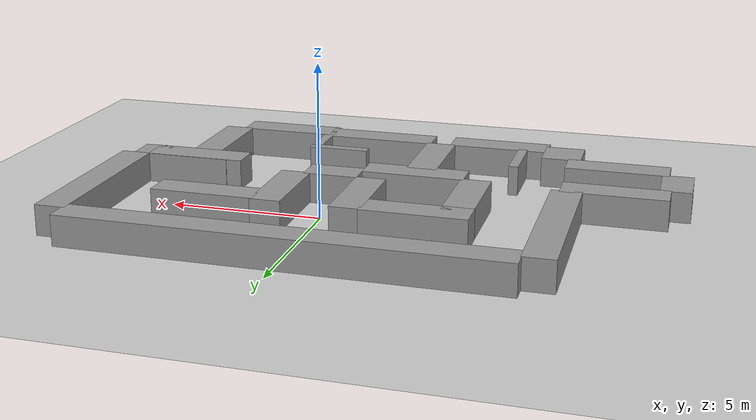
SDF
<sdf version="1.7">
 <world name="default">
  <light name="sun" type="directional">
   <pose>0 0 10 0 -0 0</pose>
   <diffuse>0.8 0.8 0.8 1</diffuse>
   <specular>0.2 0.2 0.2 1</specular>
   <attenuation>
    <range>1000</range>
    <constant>0.9</constant>
    <linear>0.01</linear>
    <quadratic>0.001</quadratic>
   </attenuation>
   <direction>-0.5 0.1 -0.9</direction>
   <spot><inner_angle>0</inner_angle><outer_angle>0</outer_angle><falloff>0</falloff></spot>
  </light>
  <model name="ground_plane">
   <static>1</static>
   <link name="link">
    <collision name="collision">
     <geometry><plane><normal>0 0 1</normal><size>100 100</size></plane></geometry>
     <surface>
      <contact><collide_bitmask>65535</collide_bitmask></contact>
      <friction><ode><mu>100</mu><mu2>50</mu2></ode></friction>
     </surface>
    </collision>
    <visual name="visual">
     <cast_shadows>0</cast_shadows>
     <geometry><plane><normal>0 0 1</normal><size>100 100</size></plane></geometry>
     <material>
      <script><uri>file://media/materials/scripts/gazebo.material</uri><name>Gazebo/Grey</name></script>
     </material>
    </visual>
   </link>
  </model>
  <gravity>0 0 -9.8</gravity>
  <magnetic_field>6e-06 2.3e-05 -4.2e-05</magnetic_field>
  <atmosphere type="adiabatic"/>
  <physics type="ode">
   <max_step_size>0.001</max_step_size>
   <real_time_factor>1</real_time_factor>
   <real_time_update_rate>1000</real_time_update_rate>
  </physics>
  <scene><ambient>0.4 0.4 0.4 1</ambient><background>0.7 0.7 0.7 1</background><shadows>1</shadows></scene>
  <spherical_coordinates>
   <surface_model>EARTH_WGS84</surface_model>
   <latitude_deg>0</latitude_deg>
   <longitude_deg>0</longitude_deg>
   <elevation>0</elevation>
   <heading_deg>0</heading_deg>
  </spherical_coordinates>
  <model name="maze2">
   <link name="link">
    <inertial>
     <mass>2.96212</mass>
     <inertia><ixx>2.41268</ixx><ixy>0</ixy><ixz>0</ixz><iyy>0.493687</iyy><iyz>0</iyz><izz>2.41268</izz></inertia>
    </inertial>
    <visual name="visual">
     <geometry><box><size>1 2.96211 1</size></box></geometry>
     <material>
      <script><name>Gazebo/Grey</name><uri>file://media/materials/scripts/gazebo.material</uri></script>
      <shader type="pixel"/>
     </material>
    </visual>
    <collision name="collision">
     <geometry><box><size>1 2.96211 1</size></box></geometry>
     <surface>
      <friction>
       <ode><mu>1</mu><mu2>1</mu2><fdir1>0 0 0</fdir1><slip1>0</slip1><slip2>0</slip2></ode>
       <torsional>
        <coefficient>1</coefficient>
        <patch_radius>0</patch_radius>
        <surface_radius>0</surface_radius>
        <use_patch_radius>1</use_patch_radius>
        <ode><slip>0</slip></ode>
       </torsional>
      </friction>
      <bounce><restitution_coefficient>0</restitution_coefficient><threshold>1e+06</threshold></bounce>
      <contact>
       <collide_without_contact>0</collide_without_contact>
       <collide_without_contact_bitmask>1</collide_without_contact_bitmask>
       <collide_bitmask>1</collide_bitmask>
       <ode>
        <soft_cfm>0</soft_cfm>
        <soft_erp>0.2</soft_erp>
        <kp>1e+13</kp>
        <kd>1</kd>
        <max_vel>0.01</max_vel>
        <min_depth>0</min_depth>
       </ode>
       <bullet>
        <split_impulse>1</split_impulse>
        <split_impulse_penetration_threshold>-0.01</split_impulse_penetration_threshold>
        <soft_cfm>0</soft_cfm>
        <soft_erp>0.2</soft_erp>
        <kp>1e+13</kp>
        <kd>1</kd>
       </bullet>
      </contact>
     </surface>
    </collision>
   </link>
   <link name="link_clone">
    <inertial>
     <mass>1.79526</mass>
     <inertia>
      <ixx>0.631773</ixx>
      <ixy>0</ixy>
      <ixz>0</ixz>
      <iyy>0.29921</iyy>
      <iyz>0</iyz>
      <izz>0.631773</izz>
     </inertia>
    </inertial>
    <pose>1.38106 -1.89898 0 0 -0 1.5708</pose>
    <visual name="visual">
     <geometry><box><size>1 1.79526 1</size></box></geometry>
     <material>
      <script><name>Gazebo/Grey</name><uri>file://media/materials/scripts/gazebo.material</uri></script>
      <shader type="pixel"/>
     </material>
    </visual>
    <collision name="collision">
     <geometry><box><size>1 1.79526 1</size></box></geometry>
     <surface>
      <friction>
       <ode><mu>1</mu><mu2>1</mu2><fdir1>0 0 0</fdir1><slip1>0</slip1><slip2>0</slip2></ode>
       <torsional>
        <coefficient>1</coefficient>
        <patch_radius>0</patch_radius>
        <surface_radius>0</surface_radius>
        <use_patch_radius>1</use_patch_radius>
        <ode><slip>0</slip></ode>
       </torsional>
      </friction>
      <bounce><restitution_coefficient>0</restitution_coefficient><threshold>1e+06</threshold></bounce>
      <contact>
       <collide_without_contact>0</collide_without_contact>
       <collide_without_contact_bitmask>1</collide_without_contact_bitmask>
       <collide_bitmask>1</collide_bitmask>
       <ode>
        <soft_cfm>0</soft_cfm>
        <soft_erp>0.2</soft_erp>
        <kp>1e+13</kp>
        <kd>1</kd>
        <max_vel>0.01</max_vel>
        <min_depth>0</min_depth>
       </ode>
       <bullet>
        <split_impulse>1</split_impulse>
        <split_impulse_penetration_threshold>-0.01</split_impulse_penetration_threshold>
        <soft_cfm>0</soft_cfm>
        <soft_erp>0.2</soft_erp>
        <kp>1e+13</kp>
        <kd>1</kd>
       </bullet>
      </contact>
     </surface>
    </collision>
   </link>
   <link name="link_clone_0">
    <inertial>
     <mass>2.96212</mass>
     <inertia><ixx>2.41268</ixx><ixy>0</ixy><ixz>0</ixz><iyy>0.493687</iyy><iyz>0</iyz><izz>2.41268</izz></inertia>
    </inertial>
    <pose>2.55538 -0.018272 0 0 -0 0</pose>
    <visual name="visual">
     <geometry><box><size>1 2.96211 1</size></box></geometry>
     <material>
      <script><name>Gazebo/Grey</name><uri>file://media/materials/scripts/gazebo.material</uri></script>
      <shader type="pixel"/>
     </material>
    </visual>
    <collision name="collision">
     <geometry><box><size>1 2.96211 1</size></box></geometry>
     <surface>
      <friction>
       <ode><mu>1</mu><mu2>1</mu2><fdir1>0 0 0</fdir1><slip1>0</slip1><slip2>0</slip2></ode>
       <torsional>
        <coefficient>1</coefficient>
        <patch_radius>0</patch_radius>
        <surface_radius>0</surface_radius>
        <use_patch_radius>1</use_patch_radius>
        <ode><slip>0</slip></ode>
       </torsional>
      </friction>
      <bounce><restitution_coefficient>0</restitution_coefficient><threshold>1e+06</threshold></bounce>
      <contact>
       <collide_without_contact>0</collide_without_contact>
       <collide_without_contact_bitmask>1</collide_without_contact_bitmask>
       <collide_bitmask>1</collide_bitmask>
       <ode>
        <soft_cfm>0</soft_cfm>
        <soft_erp>0.2</soft_erp>
        <kp>1e+13</kp>
        <kd>1</kd>
        <max_vel>0.01</max_vel>
        <min_depth>0</min_depth>
       </ode>
       <bullet>
        <split_impulse>1</split_impulse>
        <split_impulse_penetration_threshold>-0.01</split_impulse_penetration_threshold>
        <soft_cfm>0</soft_cfm>
        <soft_erp>0.2</soft_erp>
        <kp>1e+13</kp>
        <kd>1</kd>
       </bullet>
      </contact>
     </surface>
    </collision>
   </link>
   <link name="link_clone_1">
    <inertial>
     <mass>5.8184</mass>
     <inertia><ixx>16.8993</ixx><ixy>0</ixy><ixz>0</ixz><iyy>0.969733</iyy><iyz>0</iyz><izz>16.8993</izz></inertia>
    </inertial>
    <pose>-6.21926 0.997466 -0 0 -0 0</pose>
    <visual name="visual">
     <geometry><box><size>1 5.81837 1</size></box></geometry>
     <material>
      <script><name>Gazebo/Grey</name><uri>file://media/materials/scripts/gazebo.material</uri></script>
      <shader type="pixel"/>
     </material>
    </visual>
    <collision name="collision">
     <geometry><box><size>1 5.81837 1</size></box></geometry>
     <surface>
      <friction>
       <ode><mu>1</mu><mu2>1</mu2><fdir1>0 0 0</fdir1><slip1>0</slip1><slip2>0</slip2></ode>
       <torsional>
        <coefficient>1</coefficient>
        <patch_radius>0</patch_radius>
        <surface_radius>0</surface_radius>
        <use_patch_radius>1</use_patch_radius>
        <ode><slip>0</slip></ode>
       </torsional>
      </friction>
      <bounce><restitution_coefficient>0</restitution_coefficient><threshold>1e+06</threshold></bounce>
      <contact>
       <collide_without_contact>0</collide_without_contact>
       <collide_without_contact_bitmask>1</collide_without_contact_bitmask>
       <collide_bitmask>1</collide_bitmask>
       <ode>
        <soft_cfm>0</soft_cfm>
        <soft_erp>0.2</soft_erp>
        <kp>1e+13</kp>
        <kd>1</kd>
        <max_vel>0.01</max_vel>
        <min_depth>0</min_depth>
       </ode>
       <bullet>
        <split_impulse>1</split_impulse>
        <split_impulse_penetration_threshold>-0.01</split_impulse_penetration_threshold>
        <soft_cfm>0</soft_cfm>
        <soft_erp>0.2</soft_erp>
        <kp>1e+13</kp>
        <kd>1</kd>
       </bullet>
      </contact>
     </surface>
    </collision>
   </link>
   <link name="link_clone_1_clone">
    <inertial>
     <mass>5.8184</mass>
     <inertia><ixx>16.8993</ixx><ixy>0</ixy><ixz>0</ixz><iyy>0.969733</iyy><iyz>0</iyz><izz>16.8993</izz></inertia>
    </inertial>
    <pose>8.57948 0.840523 0 0 -0 0</pose>
    <visual name="visual">
     <geometry><box><size>1 5.81837 1</size></box></geometry>
     <material>
      <script><name>Gazebo/Grey</name><uri>file://media/materials/scripts/gazebo.material</uri></script>
      <shader type="pixel"/>
     </material>
    </visual>
    <collision name="collision">
     <geometry><box><size>1 5.81837 1</size></box></geometry>
     <surface>
      <friction>
       <ode><mu>1</mu><mu2>1</mu2><fdir1>0 0 0</fdir1><slip1>0</slip1><slip2>0</slip2></ode>
       <torsional>
        <coefficient>1</coefficient>
        <patch_radius>0</patch_radius>
        <surface_radius>0</surface_radius>
        <use_patch_radius>1</use_patch_radius>
        <ode><slip>0</slip></ode>
       </torsional>
      </friction>
      <bounce><restitution_coefficient>0</restitution_coefficient><threshold>1e+06</threshold></bounce>
      <contact>
       <collide_without_contact>0</collide_without_contact>
       <collide_without_contact_bitmask>1</collide_without_contact_bitmask>
       <collide_bitmask>1</collide_bitmask>
       <ode>
        <soft_cfm>0</soft_cfm>
        <soft_erp>0.2</soft_erp>
        <kp>1e+13</kp>
        <kd>1</kd>
        <max_vel>0.01</max_vel>
        <min_depth>0</min_depth>
       </ode>
       <bullet>
        <split_impulse>1</split_impulse>
        <split_impulse_penetration_threshold>-0.01</split_impulse_penetration_threshold>
        <soft_cfm>0</soft_cfm>
        <soft_erp>0.2</soft_erp>
        <kp>1e+13</kp>
        <kd>1</kd>
       </bullet>
      </contact>
     </surface>
    </collision>
   </link>
   <link name="link_clone_2">
    <inertial>
     <mass>2.96212</mass>
     <inertia><ixx>2.41268</ixx><ixy>0</ixy><ixz>0</ixz><iyy>0.493687</iyy><iyz>0</iyz><izz>2.41268</izz></inertia>
    </inertial>
    <pose>-3.29453 -0.71203 -0 0 -0 0</pose>
    <visual name="visual">
     <geometry><box><size>1 2.96211 1</size></box></geometry>
     <material>
      <script><name>Gazebo/Grey</name><uri>file://media/materials/scripts/gazebo.material</uri></script>
      <shader type="pixel"/>
     </material>
    </visual>
    <collision name="collision">
     <geometry><box><size>1 2.96211 1</size></box></geometry>
     <surface>
      <friction>
       <ode><mu>1</mu><mu2>1</mu2><fdir1>0 0 0</fdir1><slip1>0</slip1><slip2>0</slip2></ode>
       <torsional>
        <coefficient>1</coefficient>
        <patch_radius>0</patch_radius>
        <surface_radius>0</surface_radius>
        <use_patch_radius>1</use_patch_radius>
        <ode><slip>0</slip></ode>
       </torsional>
      </friction>
      <bounce><restitution_coefficient>0</restitution_coefficient><threshold>1e+06</threshold></bounce>
      <contact>
       <collide_without_contact>0</collide_without_contact>
       <collide_without_contact_bitmask>1</collide_without_contact_bitmask>
       <collide_bitmask>1</collide_bitmask>
       <ode>
        <soft_cfm>0</soft_cfm>
        <soft_erp>0.2</soft_erp>
        <kp>1e+13</kp>
        <kd>1</kd>
        <max_vel>0.01</max_vel>
        <min_depth>0</min_depth>
       </ode>
       <bullet>
        <split_impulse>1</split_impulse>
        <split_impulse_penetration_threshold>-0.01</split_impulse_penetration_threshold>
        <soft_cfm>0</soft_cfm>
        <soft_erp>0.2</soft_erp>
        <kp>1e+13</kp>
        <kd>1</kd>
       </bullet>
      </contact>
     </surface>
    </collision>
   </link>
   <link name="link_clone_2_clone">
    <inertial>
     <mass>1.62291</mass>
     <inertia>
      <ixx>0.491447</ixx>
      <ixy>0</ixy>
      <ixz>0</ixz>
      <iyy>0.270485</iyy>
      <iyz>0</iyz>
      <izz>0.491447</izz>
     </inertia>
    </inertial>
    <pose>-9.50421 -3.53684 -0 0 -0 0</pose>
    <visual name="visual">
     <geometry><box><size>1 1.62291 1</size></box></geometry>
     <material>
      <script><name>Gazebo/Grey</name><uri>file://media/materials/scripts/gazebo.material</uri></script>
      <shader type="pixel"/>
     </material>
    </visual>
    <collision name="collision">
     <geometry><box><size>1 1.62291 1</size></box></geometry>
     <surface>
      <friction>
       <ode><mu>1</mu><mu2>1</mu2><fdir1>0 0 0</fdir1><slip1>0</slip1><slip2>0</slip2></ode>
       <torsional>
        <coefficient>1</coefficient>
        <patch_radius>0</patch_radius>
        <surface_radius>0</surface_radius>
        <use_patch_radius>1</use_patch_radius>
        <ode><slip>0</slip></ode>
       </torsional>
      </friction>
      <bounce><restitution_coefficient>0</restitution_coefficient><threshold>1e+06</threshold></bounce>
      <contact>
       <collide_without_contact>0</collide_without_contact>
       <collide_without_contact_bitmask>1</collide_without_contact_bitmask>
       <collide_bitmask>1</collide_bitmask>
       <ode>
        <soft_cfm>0</soft_cfm>
        <soft_erp>0.2</soft_erp>
        <kp>1e+13</kp>
        <kd>1</kd>
        <max_vel>0.01</max_vel>
        <min_depth>0</min_depth>
       </ode>
       <bullet>
        <split_impulse>1</split_impulse>
        <split_impulse_penetration_threshold>-0.01</split_impulse_penetration_threshold>
        <soft_cfm>0</soft_cfm>
        <soft_erp>0.2</soft_erp>
        <kp>1e+13</kp>
        <kd>1</kd>
       </bullet>
      </contact>
     </surface>
    </collision>
   </link>
   <link name="link_clone_3">
    <inertial>
     <mass>2.96212</mass>
     <inertia><ixx>2.41268</ixx><ixy>0</ixy><ixz>0</ixz><iyy>0.493687</iyy><iyz>0</iyz><izz>2.41268</izz></inertia>
    </inertial>
    <pose>-1.31515 -4.38087 -0 0 -0 0</pose>
    <visual name="visual">
     <geometry><box><size>1 2.96211 1</size></box></geometry>
     <material>
      <script><name>Gazebo/Grey</name><uri>file://media/materials/scripts/gazebo.material</uri></script>
      <shader type="pixel"/>
     </material>
    </visual>
    <collision name="collision">
     <geometry><box><size>1 2.96211 1</size></box></geometry>
     <surface>
      <friction>
       <ode><mu>1</mu><mu2>1</mu2><fdir1>0 0 0</fdir1><slip1>0</slip1><slip2>0</slip2></ode>
       <torsional>
        <coefficient>1</coefficient>
        <patch_radius>0</patch_radius>
        <surface_radius>0</surface_radius>
        <use_patch_radius>1</use_patch_radius>
        <ode><slip>0</slip></ode>
       </torsional>
      </friction>
      <bounce><restitution_coefficient>0</restitution_coefficient><threshold>1e+06</threshold></bounce>
      <contact>
       <collide_without_contact>0</collide_without_contact>
       <collide_without_contact_bitmask>1</collide_without_contact_bitmask>
       <collide_bitmask>1</collide_bitmask>
       <ode>
        <soft_cfm>0</soft_cfm>
        <soft_erp>0.2</soft_erp>
        <kp>1e+13</kp>
        <kd>1</kd>
        <max_vel>0.01</max_vel>
        <min_depth>0</min_depth>
       </ode>
       <bullet>
        <split_impulse>1</split_impulse>
        <split_impulse_penetration_threshold>-0.01</split_impulse_penetration_threshold>
        <soft_cfm>0</soft_cfm>
        <soft_erp>0.2</soft_erp>
        <kp>1e+13</kp>
        <kd>1</kd>
       </bullet>
      </contact>
     </surface>
    </collision>
   </link>
   <link name="link_clone_3_clone">
    <inertial>
     <mass>0.649592</mass>
     <inertia><ixx>0.272357</ixx><ixy>0</ixy><ixz>0</ixz><iyy>0.0598</iyy><iyz>0</iyz><izz>0.223891</izz></inertia>
    </inertial>
    <pose>-4.19306 -4.93795 -0 0 -0 0</pose>
    <visual name="visual">
     <geometry><box><size>0.323563 2.0078 1</size></box></geometry>
     <material>
      <script><name>Gazebo/Grey</name><uri>file://media/materials/scripts/gazebo.material</uri></script>
      <shader type="pixel"/>
     </material>
    </visual>
    <collision name="collision">
     <geometry><box><size>0.323563 2.0078 1</size></box></geometry>
     <surface>
      <friction>
       <ode><mu>1</mu><mu2>1</mu2><fdir1>0 0 0</fdir1><slip1>0</slip1><slip2>0</slip2></ode>
       <torsional>
        <coefficient>1</coefficient>
        <patch_radius>0</patch_radius>
        <surface_radius>0</surface_radius>
        <use_patch_radius>1</use_patch_radius>
        <ode><slip>0</slip></ode>
       </torsional>
      </friction>
      <bounce><restitution_coefficient>0</restitution_coefficient><threshold>1e+06</threshold></bounce>
      <contact>
       <collide_without_contact>0</collide_without_contact>
       <collide_without_contact_bitmask>1</collide_without_contact_bitmask>
       <collide_bitmask>1</collide_bitmask>
       <ode>
        <soft_cfm>0</soft_cfm>
        <soft_erp>0.2</soft_erp>
        <kp>1e+13</kp>
        <kd>1</kd>
        <max_vel>0.01</max_vel>
        <min_depth>0</min_depth>
       </ode>
       <bullet>
        <split_impulse>1</split_impulse>
        <split_impulse_penetration_threshold>-0.01</split_impulse_penetration_threshold>
        <soft_cfm>0</soft_cfm>
        <soft_erp>0.2</soft_erp>
        <kp>1e+13</kp>
        <kd>1</kd>
       </bullet>
      </contact>
     </surface>
    </collision>
   </link>
   <link name="link_clone_3_clone_0">
    <inertial>
     <mass>2.96212</mass>
     <inertia><ixx>2.41268</ixx><ixy>0</ixy><ixz>0</ixz><iyy>0.493687</iyy><iyz>0</iyz><izz>2.41268</izz></inertia>
    </inertial>
    <pose>6.30293 -4.49353 0 0 -0 0</pose>
    <visual name="visual">
     <geometry><box><size>1 2.96211 1</size></box></geometry>
     <material>
      <script><name>Gazebo/Grey</name><uri>file://media/materials/scripts/gazebo.material</uri></script>
      <shader type="pixel"/>
     </material>
    </visual>
    <collision name="collision">
     <geometry><box><size>1 2.96211 1</size></box></geometry>
     <surface>
      <friction>
       <ode><mu>1</mu><mu2>1</mu2><fdir1>0 0 0</fdir1><slip1>0</slip1><slip2>0</slip2></ode>
       <torsional>
        <coefficient>1</coefficient>
        <patch_radius>0</patch_radius>
        <surface_radius>0</surface_radius>
        <use_patch_radius>1</use_patch_radius>
        <ode><slip>0</slip></ode>
       </torsional>
      </friction>
      <bounce><restitution_coefficient>0</restitution_coefficient><threshold>1e+06</threshold></bounce>
      <contact>
       <collide_without_contact>0</collide_without_contact>
       <collide_without_contact_bitmask>1</collide_without_contact_bitmask>
       <collide_bitmask>1</collide_bitmask>
       <ode>
        <soft_cfm>0</soft_cfm>
        <soft_erp>0.2</soft_erp>
        <kp>1e+13</kp>
        <kd>1</kd>
        <max_vel>0.01</max_vel>
        <min_depth>0</min_depth>
       </ode>
       <bullet>
        <split_impulse>1</split_impulse>
        <split_impulse_penetration_threshold>-0.01</split_impulse_penetration_threshold>
        <soft_cfm>0</soft_cfm>
        <soft_erp>0.2</soft_erp>
        <kp>1e+13</kp>
        <kd>1</kd>
       </bullet>
      </contact>
     </surface>
    </collision>
   </link>
   <link name="link_clone_3_clone_clone">
    <inertial>
     <mass>0.649592</mass>
     <inertia><ixx>0.272357</ixx><ixy>0</ixy><ixz>0</ixz><iyy>0.0598</iyy><iyz>0</iyz><izz>0.223891</izz></inertia>
    </inertial>
    <pose>2.84091 -5.24484 0 0 -0 0</pose>
    <visual name="visual">
     <geometry><box><size>0.323563 2.0078 1</size></box></geometry>
     <material>
      <script><name>Gazebo/Grey</name><uri>file://media/materials/scripts/gazebo.material</uri></script>
      <shader type="pixel"/>
     </material>
    </visual>
    <collision name="collision">
     <geometry><box><size>0.323563 2.0078 1</size></box></geometry>
     <surface>
      <friction>
       <ode><mu>1</mu><mu2>1</mu2><fdir1>0 0 0</fdir1><slip1>0</slip1><slip2>0</slip2></ode>
       <torsional>
        <coefficient>1</coefficient>
        <patch_radius>0</patch_radius>
        <surface_radius>0</surface_radius>
        <use_patch_radius>1</use_patch_radius>
        <ode><slip>0</slip></ode>
       </torsional>
      </friction>
      <bounce><restitution_coefficient>0</restitution_coefficient><threshold>1e+06</threshold></bounce>
      <contact>
       <collide_without_contact>0</collide_without_contact>
       <collide_without_contact_bitmask>1</collide_without_contact_bitmask>
       <collide_bitmask>1</collide_bitmask>
       <ode>
        <soft_cfm>0</soft_cfm>
        <soft_erp>0.2</soft_erp>
        <kp>1e+13</kp>
        <kd>1</kd>
        <max_vel>0.01</max_vel>
        <min_depth>0</min_depth>
       </ode>
       <bullet>
        <split_impulse>1</split_impulse>
        <split_impulse_penetration_threshold>-0.01</split_impulse_penetration_threshold>
        <soft_cfm>0</soft_cfm>
        <soft_erp>0.2</soft_erp>
        <kp>1e+13</kp>
        <kd>1</kd>
       </bullet>
      </contact>
     </surface>
    </collision>
   </link>
   <link name="link_clone_3_clone_clone_0">
    <inertial>
     <mass>0.649592</mass>
     <inertia><ixx>0.272357</ixx><ixy>0</ixy><ixz>0</ixz><iyy>0.0598</iyy><iyz>0</iyz><izz>0.223891</izz></inertia>
    </inertial>
    <pose>1.98745 -4.45718 0 0 -0 1.5708</pose>
    <visual name="visual">
     <geometry><box><size>0.323563 2.0078 1</size></box></geometry>
     <material>
      <script><name>Gazebo/Grey</name><uri>file://media/materials/scripts/gazebo.material</uri></script>
      <shader type="pixel"/>
     </material>
    </visual>
    <collision name="collision">
     <geometry><box><size>0.323563 2.0078 1</size></box></geometry>
     <surface>
      <friction>
       <ode><mu>1</mu><mu2>1</mu2><fdir1>0 0 0</fdir1><slip1>0</slip1><slip2>0</slip2></ode>
       <torsional>
        <coefficient>1</coefficient>
        <patch_radius>0</patch_radius>
        <surface_radius>0</surface_radius>
        <use_patch_radius>1</use_patch_radius>
        <ode><slip>0</slip></ode>
       </torsional>
      </friction>
      <bounce><restitution_coefficient>0</restitution_coefficient><threshold>1e+06</threshold></bounce>
      <contact>
       <collide_without_contact>0</collide_without_contact>
       <collide_without_contact_bitmask>1</collide_without_contact_bitmask>
       <collide_bitmask>1</collide_bitmask>
       <ode>
        <soft_cfm>0</soft_cfm>
        <soft_erp>0.2</soft_erp>
        <kp>1e+13</kp>
        <kd>1</kd>
        <max_vel>0.01</max_vel>
        <min_depth>0</min_depth>
       </ode>
       <bullet>
        <split_impulse>1</split_impulse>
        <split_impulse_penetration_threshold>-0.01</split_impulse_penetration_threshold>
        <soft_cfm>0</soft_cfm>
        <soft_erp>0.2</soft_erp>
        <kp>1e+13</kp>
        <kd>1</kd>
       </bullet>
      </contact>
     </surface>
    </collision>
   </link>
   <link name="link_clone_clone">
    <inertial>
     <mass>3.37896</mass>
     <inertia><ixx>3.49648</ixx><ixy>0</ixy><ixz>0</ixz><iyy>0.563159</iyy><iyz>0</iyz><izz>3.49648</izz></inertia>
    </inertial>
    <pose>4.67596 0.938299 0 0 -0 1.5708</pose>
    <visual name="visual">
     <geometry><box><size>1 3.37896 1</size></box></geometry>
     <material>
      <script><name>Gazebo/Grey</name><uri>file://media/materials/scripts/gazebo.material</uri></script>
      <shader type="pixel"/>
     </material>
    </visual>
    <collision name="collision">
     <geometry><box><size>1 3.37896 1</size></box></geometry>
     <surface>
      <friction>
       <ode><mu>1</mu><mu2>1</mu2><fdir1>0 0 0</fdir1><slip1>0</slip1><slip2>0</slip2></ode>
       <torsional>
        <coefficient>1</coefficient>
        <patch_radius>0</patch_radius>
        <surface_radius>0</surface_radius>
        <use_patch_radius>1</use_patch_radius>
        <ode><slip>0</slip></ode>
       </torsional>
      </friction>
      <bounce><restitution_coefficient>0</restitution_coefficient><threshold>1e+06</threshold></bounce>
      <contact>
       <collide_without_contact>0</collide_without_contact>
       <collide_without_contact_bitmask>1</collide_without_contact_bitmask>
       <collide_bitmask>1</collide_bitmask>
       <ode>
        <soft_cfm>0</soft_cfm>
        <soft_erp>0.2</soft_erp>
        <kp>1e+13</kp>
        <kd>1</kd>
        <max_vel>0.01</max_vel>
        <min_depth>0</min_depth>
       </ode>
       <bullet>
        <split_impulse>1</split_impulse>
        <split_impulse_penetration_threshold>-0.01</split_impulse_penetration_threshold>
        <soft_cfm>0</soft_cfm>
        <soft_erp>0.2</soft_erp>
        <kp>1e+13</kp>
        <kd>1</kd>
       </bullet>
      </contact>
     </surface>
    </collision>
   </link>
   <link name="link_clone_clone_clone">
    <inertial>
     <mass>3.37896</mass>
     <inertia><ixx>3.49648</ixx><ixy>0</ixy><ixz>0</ixz><iyy>0.563159</iyy><iyz>0</iyz><izz>3.49648</izz></inertia>
    </inertial>
    <pose>-2.10952 1.01211 -0 0 -0 1.5708</pose>
    <visual name="visual">
     <geometry><box><size>1 3.37896 1</size></box></geometry>
     <material>
      <script><name>Gazebo/Grey</name><uri>file://media/materials/scripts/gazebo.material</uri></script>
      <shader type="pixel"/>
     </material>
    </visual>
    <collision name="collision">
     <geometry><box><size>1 3.37896 1</size></box></geometry>
     <surface>
      <friction>
       <ode><mu>1</mu><mu2>1</mu2><fdir1>0 0 0</fdir1><slip1>0</slip1><slip2>0</slip2></ode>
       <torsional>
        <coefficient>1</coefficient>
        <patch_radius>0</patch_radius>
        <surface_radius>0</surface_radius>
        <use_patch_radius>1</use_patch_radius>
        <ode><slip>0</slip></ode>
       </torsional>
      </friction>
      <bounce><restitution_coefficient>0</restitution_coefficient><threshold>1e+06</threshold></bounce>
      <contact>
       <collide_without_contact>0</collide_without_contact>
       <collide_without_contact_bitmask>1</collide_without_contact_bitmask>
       <collide_bitmask>1</collide_bitmask>
       <ode>
        <soft_cfm>0</soft_cfm>
        <soft_erp>0.2</soft_erp>
        <kp>1e+13</kp>
        <kd>1</kd>
        <max_vel>0.01</max_vel>
        <min_depth>0</min_depth>
       </ode>
       <bullet>
        <split_impulse>1</split_impulse>
        <split_impulse_penetration_threshold>-0.01</split_impulse_penetration_threshold>
        <soft_cfm>0</soft_cfm>
        <soft_erp>0.2</soft_erp>
        <kp>1e+13</kp>
        <kd>1</kd>
       </bullet>
      </contact>
     </surface>
    </collision>
   </link>
   <link name="link_clone_clone_clone_0">
    <inertial>
     <mass>13.9146</mass>
     <inertia><ixx>225.666</ixx><ixy>0</ixy><ixz>0</ixz><iyy>2.3191</iyy><iyz>0</iyz><izz>225.666</izz></inertia>
    </inertial>
    <pose>1.19927 3.93784 0 0 -0 1.5708</pose>
    <visual name="visual">
     <geometry><box><size>1 13.9146 1</size></box></geometry>
     <material>
      <script><name>Gazebo/Grey</name><uri>file://media/materials/scripts/gazebo.material</uri></script>
      <shader type="pixel"/>
     </material>
    </visual>
    <collision name="collision">
     <geometry><box><size>1 13.9146 1</size></box></geometry>
     <surface>
      <friction>
       <ode><mu>1</mu><mu2>1</mu2><fdir1>0 0 0</fdir1><slip1>0</slip1><slip2>0</slip2></ode>
       <torsional>
        <coefficient>1</coefficient>
        <patch_radius>0</patch_radius>
        <surface_radius>0</surface_radius>
        <use_patch_radius>1</use_patch_radius>
        <ode><slip>0</slip></ode>
       </torsional>
      </friction>
      <bounce><restitution_coefficient>0</restitution_coefficient><threshold>1e+06</threshold></bounce>
      <contact>
       <collide_without_contact>0</collide_without_contact>
       <collide_without_contact_bitmask>1</collide_without_contact_bitmask>
       <collide_bitmask>1</collide_bitmask>
       <ode>
        <soft_cfm>0</soft_cfm>
        <soft_erp>0.2</soft_erp>
        <kp>1e+13</kp>
        <kd>1</kd>
        <max_vel>0.01</max_vel>
        <min_depth>0</min_depth>
       </ode>
       <bullet>
        <split_impulse>1</split_impulse>
        <split_impulse_penetration_threshold>-0.01</split_impulse_penetration_threshold>
        <soft_cfm>0</soft_cfm>
        <soft_erp>0.2</soft_erp>
        <kp>1e+13</kp>
        <kd>1</kd>
       </bullet>
      </contact>
     </surface>
    </collision>
   </link>
   <link name="link_clone_clone_clone_1">
    <inertial>
     <mass>3.37896</mass>
     <inertia><ixx>3.49648</ixx><ixy>0</ixy><ixz>0</ixz><iyy>0.563159</iyy><iyz>0</iyz><izz>3.49648</izz></inertia>
    </inertial>
    <pose>6.94505 -2.5307 0 0 -0 1.5708</pose>
    <visual name="visual">
     <geometry><box><size>1 3.37896 1</size></box></geometry>
     <material>
      <script><name>Gazebo/Grey</name><uri>file://media/materials/scripts/gazebo.material</uri></script>
      <shader type="pixel"/>
     </material>
    </visual>
    <collision name="collision">
     <geometry><box><size>1 3.37896 1</size></box></geometry>
     <surface>
      <friction>
       <ode><mu>1</mu><mu2>1</mu2><fdir1>0 0 0</fdir1><slip1>0</slip1><slip2>0</slip2></ode>
       <torsional>
        <coefficient>1</coefficient>
        <patch_radius>0</patch_radius>
        <surface_radius>0</surface_radius>
        <use_patch_radius>1</use_patch_radius>
        <ode><slip>0</slip></ode>
       </torsional>
      </friction>
      <bounce><restitution_coefficient>0</restitution_coefficient><threshold>1e+06</threshold></bounce>
      <contact>
       <collide_without_contact>0</collide_without_contact>
       <collide_without_contact_bitmask>1</collide_without_contact_bitmask>
       <collide_bitmask>1</collide_bitmask>
       <ode>
        <soft_cfm>0</soft_cfm>
        <soft_erp>0.2</soft_erp>
        <kp>1e+13</kp>
        <kd>1</kd>
        <max_vel>0.01</max_vel>
        <min_depth>0</min_depth>
       </ode>
       <bullet>
        <split_impulse>1</split_impulse>
        <split_impulse_penetration_threshold>-0.01</split_impulse_penetration_threshold>
        <soft_cfm>0</soft_cfm>
        <soft_erp>0.2</soft_erp>
        <kp>1e+13</kp>
        <kd>1</kd>
       </bullet>
      </contact>
     </surface>
    </collision>
   </link>
   <link name="link_clone_clone_clone_2_clone">
    <inertial>
     <mass>3.37896</mass>
     <inertia><ixx>3.49648</ixx><ixy>0</ixy><ixz>0</ixz><iyy>0.563159</iyy><iyz>0</iyz><izz>3.49648</izz></inertia>
    </inertial>
    <pose>-7.53554 -4.75976 -0 0 -0 1.5708</pose>
    <visual name="visual">
     <geometry><box><size>1 3.37896 1</size></box></geometry>
     <material>
      <script><name>Gazebo/Grey</name><uri>file://media/materials/scripts/gazebo.material</uri></script>
      <shader type="pixel"/>
     </material>
    </visual>
    <collision name="collision">
     <geometry><box><size>1 3.37896 1</size></box></geometry>
     <surface>
      <friction>
       <ode><mu>1</mu><mu2>1</mu2><fdir1>0 0 0</fdir1><slip1>0</slip1><slip2>0</slip2></ode>
       <torsional>
        <coefficient>1</coefficient>
        <patch_radius>0</patch_radius>
        <surface_radius>0</surface_radius>
        <use_patch_radius>1</use_patch_radius>
        <ode><slip>0</slip></ode>
       </torsional>
      </friction>
      <bounce><restitution_coefficient>0</restitution_coefficient><threshold>1e+06</threshold></bounce>
      <contact>
       <collide_without_contact>0</collide_without_contact>
       <collide_without_contact_bitmask>1</collide_without_contact_bitmask>
       <collide_bitmask>1</collide_bitmask>
       <ode>
        <soft_cfm>0</soft_cfm>
        <soft_erp>0.2</soft_erp>
        <kp>1e+13</kp>
        <kd>1</kd>
        <max_vel>0.01</max_vel>
        <min_depth>0</min_depth>
       </ode>
       <bullet>
        <split_impulse>1</split_impulse>
        <split_impulse_penetration_threshold>-0.01</split_impulse_penetration_threshold>
        <soft_cfm>0</soft_cfm>
        <soft_erp>0.2</soft_erp>
        <kp>1e+13</kp>
        <kd>1</kd>
       </bullet>
      </contact>
     </surface>
    </collision>
   </link>
   <link name="link_clone_clone_clone_2_clone_clone">
    <inertial>
     <mass>3.37896</mass>
     <inertia><ixx>3.49648</ixx><ixy>0</ixy><ixz>0</ixz><iyy>0.563159</iyy><iyz>0</iyz><izz>3.49648</izz></inertia>
    </inertial>
    <pose>-7.67532 -2.29518 -0 0 -0 1.5708</pose>
    <visual name="visual">
     <geometry><box><size>1 3.37896 1</size></box></geometry>
     <material>
      <script><name>Gazebo/Grey</name><uri>file://media/materials/scripts/gazebo.material</uri></script>
      <shader type="pixel"/>
     </material>
    </visual>
    <collision name="collision">
     <geometry><box><size>1 3.37896 1</size></box></geometry>
     <surface>
      <friction>
       <ode><mu>1</mu><mu2>1</mu2><fdir1>0 0 0</fdir1><slip1>0</slip1><slip2>0</slip2></ode>
       <torsional>
        <coefficient>1</coefficient>
        <patch_radius>0</patch_radius>
        <surface_radius>0</surface_radius>
        <use_patch_radius>1</use_patch_radius>
        <ode><slip>0</slip></ode>
       </torsional>
      </friction>
      <bounce><restitution_coefficient>0</restitution_coefficient><threshold>1e+06</threshold></bounce>
      <contact>
       <collide_without_contact>0</collide_without_contact>
       <collide_without_contact_bitmask>1</collide_without_contact_bitmask>
       <collide_bitmask>1</collide_bitmask>
       <ode>
        <soft_cfm>0</soft_cfm>
        <soft_erp>0.2</soft_erp>
        <kp>1e+13</kp>
        <kd>1</kd>
        <max_vel>0.01</max_vel>
        <min_depth>0</min_depth>
       </ode>
       <bullet>
        <split_impulse>1</split_impulse>
        <split_impulse_penetration_threshold>-0.01</split_impulse_penetration_threshold>
        <soft_cfm>0</soft_cfm>
        <soft_erp>0.2</soft_erp>
        <kp>1e+13</kp>
        <kd>1</kd>
       </bullet>
      </contact>
     </surface>
    </collision>
   </link>
   <link name="link_clone_clone_clone_2_clone_clone_0">
    <inertial>
     <mass>3.37896</mass>
     <inertia><ixx>3.49648</ixx><ixy>0</ixy><ixz>0</ixz><iyy>0.563159</iyy><iyz>0</iyz><izz>3.49648</izz></inertia>
    </inertial>
    <pose>6.42474 -2.54838 0 0 -0 1.5708</pose>
    <visual name="visual">
     <geometry><box><size>1 3.37896 1</size></box></geometry>
     <material>
      <script><name>Gazebo/Grey</name><uri>file://media/materials/scripts/gazebo.material</uri></script>
      <shader type="pixel"/>
     </material>
    </visual>
    <collision name="collision">
     <geometry><box><size>1 3.37896 1</size></box></geometry>
     <surface>
      <friction>
       <ode><mu>1</mu><mu2>1</mu2><fdir1>0 0 0</fdir1><slip1>0</slip1><slip2>0</slip2></ode>
       <torsional>
        <coefficient>1</coefficient>
        <patch_radius>0</patch_radius>
        <surface_radius>0</surface_radius>
        <use_patch_radius>1</use_patch_radius>
        <ode><slip>0</slip></ode>
       </torsional>
      </friction>
      <bounce><restitution_coefficient>0</restitution_coefficient><threshold>1e+06</threshold></bounce>
      <contact>
       <collide_without_contact>0</collide_without_contact>
       <collide_without_contact_bitmask>1</collide_without_contact_bitmask>
       <collide_bitmask>1</collide_bitmask>
       <ode>
        <soft_cfm>0</soft_cfm>
        <soft_erp>0.2</soft_erp>
        <kp>1e+13</kp>
        <kd>1</kd>
        <max_vel>0.01</max_vel>
        <min_depth>0</min_depth>
       </ode>
       <bullet>
        <split_impulse>1</split_impulse>
        <split_impulse_penetration_threshold>-0.01</split_impulse_penetration_threshold>
        <soft_cfm>0</soft_cfm>
        <soft_erp>0.2</soft_erp>
        <kp>1e+13</kp>
        <kd>1</kd>
       </bullet>
      </contact>
     </surface>
    </collision>
   </link>
   <link name="link_clone_clone_clone_2_clone_clone_1">
    <inertial>
     <mass>3.37896</mass>
     <inertia><ixx>3.49648</ixx><ixy>0</ixy><ixz>0</ixz><iyy>0.563159</iyy><iyz>0</iyz><izz>3.49648</izz></inertia>
    </inertial>
    <pose>-3.32971 -6.30423 -0 0 -0 1.5708</pose>
    <visual name="visual">
     <geometry><box><size>1 3.37896 1</size></box></geometry>
     <material>
      <script><name>Gazebo/Grey</name><uri>file://media/materials/scripts/gazebo.material</uri></script>
      <shader type="pixel"/>
     </material>
    </visual>
    <collision name="collision">
     <geometry><box><size>1 3.37896 1</size></box></geometry>
     <surface>
      <friction>
       <ode><mu>1</mu><mu2>1</mu2><fdir1>0 0 0</fdir1><slip1>0</slip1><slip2>0</slip2></ode>
       <torsional>
        <coefficient>1</coefficient>
        <patch_radius>0</patch_radius>
        <surface_radius>0</surface_radius>
        <use_patch_radius>1</use_patch_radius>
        <ode><slip>0</slip></ode>
       </torsional>
      </friction>
      <bounce><restitution_coefficient>0</restitution_coefficient><threshold>1e+06</threshold></bounce>
      <contact>
       <collide_without_contact>0</collide_without_contact>
       <collide_without_contact_bitmask>1</collide_without_contact_bitmask>
       <collide_bitmask>1</collide_bitmask>
       <ode>
        <soft_cfm>0</soft_cfm>
        <soft_erp>0.2</soft_erp>
        <kp>1e+13</kp>
        <kd>1</kd>
        <max_vel>0.01</max_vel>
        <min_depth>0</min_depth>
       </ode>
       <bullet>
        <split_impulse>1</split_impulse>
        <split_impulse_penetration_threshold>-0.01</split_impulse_penetration_threshold>
        <soft_cfm>0</soft_cfm>
        <soft_erp>0.2</soft_erp>
        <kp>1e+13</kp>
        <kd>1</kd>
       </bullet>
      </contact>
     </surface>
    </collision>
   </link>
   <link name="link_clone_clone_clone_2_clone_clone_1_clone">
    <inertial>
     <mass>3.37896</mass>
     <inertia><ixx>3.49648</ixx><ixy>0</ixy><ixz>0</ixz><iyy>0.563159</iyy><iyz>0</iyz><izz>3.49648</izz></inertia>
    </inertial>
    <pose>4.39226 -6.39575 0 0 -0 1.5708</pose>
    <visual name="visual">
     <geometry><box><size>1 3.37896 1</size></box></geometry>
     <material>
      <script><name>Gazebo/Grey</name><uri>file://media/materials/scripts/gazebo.material</uri></script>
      <shader type="pixel"/>
     </material>
    </visual>
    <collision name="collision">
     <geometry><box><size>1 3.37896 1</size></box></geometry>
     <surface>
      <friction>
       <ode><mu>1</mu><mu2>1</mu2><fdir1>0 0 0</fdir1><slip1>0</slip1><slip2>0</slip2></ode>
       <torsional>
        <coefficient>1</coefficient>
        <patch_radius>0</patch_radius>
        <surface_radius>0</surface_radius>
        <use_patch_radius>1</use_patch_radius>
        <ode><slip>0</slip></ode>
       </torsional>
      </friction>
      <bounce><restitution_coefficient>0</restitution_coefficient><threshold>1e+06</threshold></bounce>
      <contact>
       <collide_without_contact>0</collide_without_contact>
       <collide_without_contact_bitmask>1</collide_without_contact_bitmask>
       <collide_bitmask>1</collide_bitmask>
       <ode>
        <soft_cfm>0</soft_cfm>
        <soft_erp>0.2</soft_erp>
        <kp>1e+13</kp>
        <kd>1</kd>
        <max_vel>0.01</max_vel>
        <min_depth>0</min_depth>
       </ode>
       <bullet>
        <split_impulse>1</split_impulse>
        <split_impulse_penetration_threshold>-0.01</split_impulse_penetration_threshold>
        <soft_cfm>0</soft_cfm>
        <soft_erp>0.2</soft_erp>
        <kp>1e+13</kp>
        <kd>1</kd>
       </bullet>
      </contact>
     </surface>
    </collision>
   </link>
   <link name="link_clone_clone_clone_2_clone_clone_1_clone_clone">
    <inertial>
     <mass>3.83558</mass>
     <inertia><ixx>5.02194</ixx><ixy>0</ixy><ixz>0</ixz><iyy>0.639263</iyy><iyz>0</iyz><izz>5.02194</izz></inertia>
    </inertial>
    <pose>0.966456 -6.25614 0 0 -0 1.5708</pose>
    <visual name="visual">
     <geometry><box><size>1 3.83558 1</size></box></geometry>
     <material>
      <script><name>Gazebo/Grey</name><uri>file://media/materials/scripts/gazebo.material</uri></script>
      <shader type="pixel"/>
     </material>
    </visual>
    <collision name="collision">
     <geometry><box><size>1 3.83558 1</size></box></geometry>
     <surface>
      <friction>
       <ode><mu>1</mu><mu2>1</mu2><fdir1>0 0 0</fdir1><slip1>0</slip1><slip2>0</slip2></ode>
       <torsional>
        <coefficient>1</coefficient>
        <patch_radius>0</patch_radius>
        <surface_radius>0</surface_radius>
        <use_patch_radius>1</use_patch_radius>
        <ode><slip>0</slip></ode>
       </torsional>
      </friction>
      <bounce><restitution_coefficient>0</restitution_coefficient><threshold>1e+06</threshold></bounce>
      <contact>
       <collide_without_contact>0</collide_without_contact>
       <collide_without_contact_bitmask>1</collide_without_contact_bitmask>
       <collide_bitmask>1</collide_bitmask>
       <ode>
        <soft_cfm>0</soft_cfm>
        <soft_erp>0.2</soft_erp>
        <kp>1e+13</kp>
        <kd>1</kd>
        <max_vel>0.01</max_vel>
        <min_depth>0</min_depth>
       </ode>
       <bullet>
        <split_impulse>1</split_impulse>
        <split_impulse_penetration_threshold>-0.01</split_impulse_penetration_threshold>
        <soft_cfm>0</soft_cfm>
        <soft_erp>0.2</soft_erp>
        <kp>1e+13</kp>
        <kd>1</kd>
       </bullet>
      </contact>
     </surface>
    </collision>
   </link>
   <link name="link_clone_clone_clone_2_clone_clone_2">
    <inertial>
     <mass>1.81404</mass>
     <inertia>
      <ixx>0.413797</ixx>
      <ixy>0</ixy>
      <ixz>0</ixz>
      <iyy>0.437511</iyy>
      <iyz>0</iyz>
      <izz>0.548967</izz>
     </inertia>
    </inertial>
    <pose>-5.60134 -5.83233 -0 0 -0 1.5708</pose>
    <visual name="visual">
     <geometry><box><size>1.37628 1.31806 1</size></box></geometry>
     <material>
      <script><name>Gazebo/Grey</name><uri>file://media/materials/scripts/gazebo.material</uri></script>
      <shader type="pixel"/>
     </material>
    </visual>
    <collision name="collision">
     <geometry><box><size>1.37628 1.31806 1</size></box></geometry>
     <surface>
      <friction>
       <ode><mu>1</mu><mu2>1</mu2><fdir1>0 0 0</fdir1><slip1>0</slip1><slip2>0</slip2></ode>
       <torsional>
        <coefficient>1</coefficient>
        <patch_radius>0</patch_radius>
        <surface_radius>0</surface_radius>
        <use_patch_radius>1</use_patch_radius>
        <ode><slip>0</slip></ode>
       </torsional>
      </friction>
      <bounce><restitution_coefficient>0</restitution_coefficient><threshold>1e+06</threshold></bounce>
      <contact>
       <collide_without_contact>0</collide_without_contact>
       <collide_without_contact_bitmask>1</collide_without_contact_bitmask>
       <collide_bitmask>1</collide_bitmask>
       <ode>
        <soft_cfm>0</soft_cfm>
        <soft_erp>0.2</soft_erp>
        <kp>1e+13</kp>
        <kd>1</kd>
        <max_vel>0.01</max_vel>
        <min_depth>0</min_depth>
       </ode>
       <bullet>
        <split_impulse>1</split_impulse>
        <split_impulse_penetration_threshold>-0.01</split_impulse_penetration_threshold>
        <soft_cfm>0</soft_cfm>
        <soft_erp>0.2</soft_erp>
        <kp>1e+13</kp>
        <kd>1</kd>
       </bullet>
      </contact>
     </surface>
    </collision>
   </link>
   <link name="link_clone_clone_clone_3">
    <inertial>
     <mass>3.37896</mass>
     <inertia><ixx>3.49648</ixx><ixy>0</ixy><ixz>0</ixz><iyy>0.563159</iyy><iyz>0</iyz><izz>3.49648</izz></inertia>
    </inertial>
    <pose>-1.19768 -2.57864 -0 0 -0 1.5708</pose>
    <visual name="visual">
     <geometry><box><size>1 3.37896 1</size></box></geometry>
     <material>
      <script><name>Gazebo/Grey</name><uri>file://media/materials/scripts/gazebo.material</uri></script>
      <shader type="pixel"/>
     </material>
    </visual>
    <collision name="collision">
     <geometry><box><size>1 3.37896 1</size></box></geometry>
     <surface>
      <friction>
       <ode><mu>1</mu><mu2>1</mu2><fdir1>0 0 0</fdir1><slip1>0</slip1><slip2>0</slip2></ode>
       <torsional>
        <coefficient>1</coefficient>
        <patch_radius>0</patch_radius>
        <surface_radius>0</surface_radius>
        <use_patch_radius>1</use_patch_radius>
        <ode><slip>0</slip></ode>
       </torsional>
      </friction>
      <bounce><restitution_coefficient>0</restitution_coefficient><threshold>1e+06</threshold></bounce>
      <contact>
       <collide_without_contact>0</collide_without_contact>
       <collide_without_contact_bitmask>1</collide_without_contact_bitmask>
       <collide_bitmask>1</collide_bitmask>
       <ode>
        <soft_cfm>0</soft_cfm>
        <soft_erp>0.2</soft_erp>
        <kp>1e+13</kp>
        <kd>1</kd>
        <max_vel>0.01</max_vel>
        <min_depth>0</min_depth>
       </ode>
       <bullet>
        <split_impulse>1</split_impulse>
        <split_impulse_penetration_threshold>-0.01</split_impulse_penetration_threshold>
        <soft_cfm>0</soft_cfm>
        <soft_erp>0.2</soft_erp>
        <kp>1e+13</kp>
        <kd>1</kd>
       </bullet>
      </contact>
     </surface>
    </collision>
   </link>
   <static>0</static>
   <pose>-1.25 -0 0.5 0 -0 0</pose>
  </model>
 </world>
</sdf>
